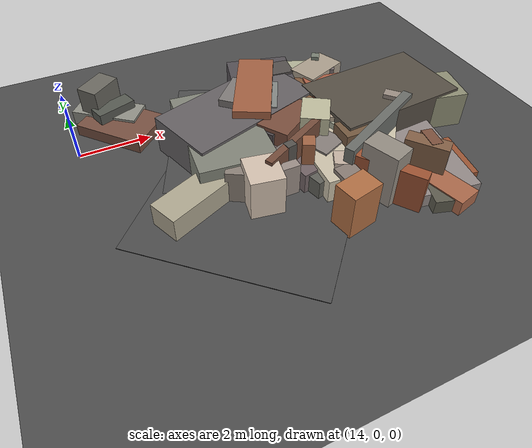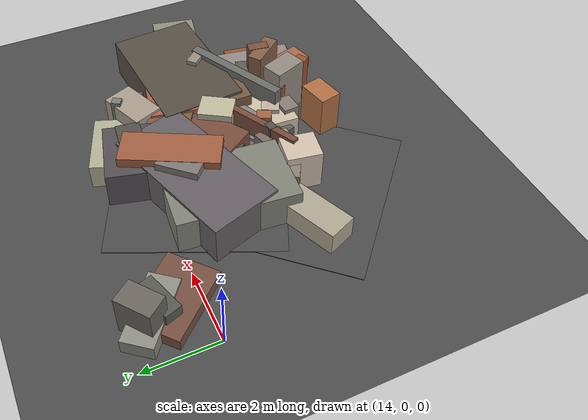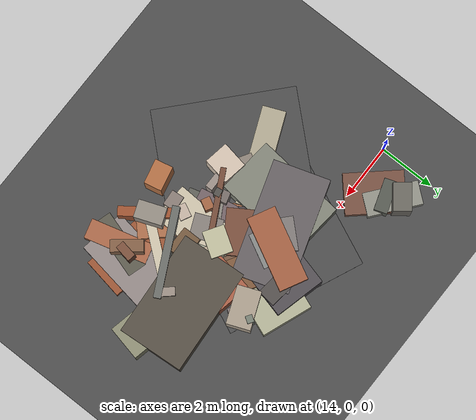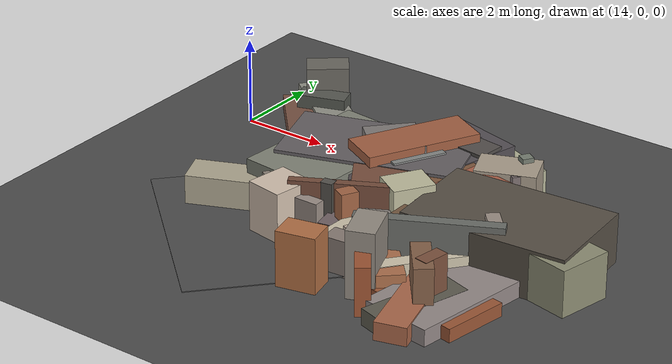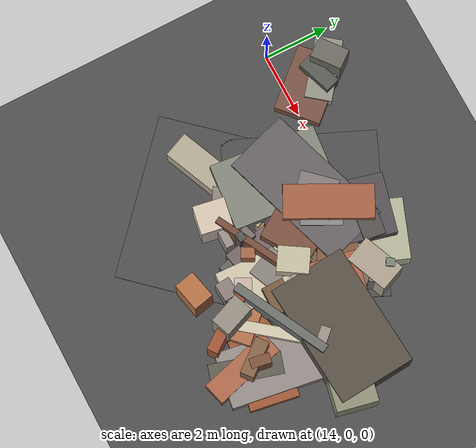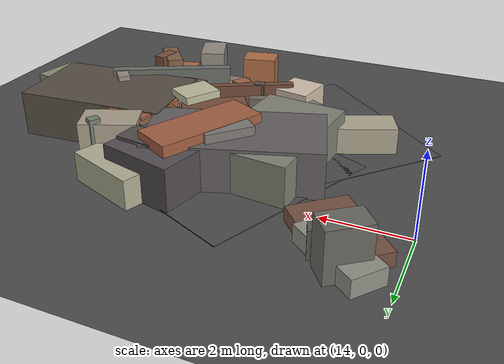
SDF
<sdf version="1.6">
 <world name="navitas_arena">
  <model name="ground_plane">
   <static>true</static>
   <link name="link">
    <collision name="collision">
     <geometry><plane><normal>0 0 1</normal><size>400 400</size></plane></geometry>
     <surface><friction><ode><mu>0.800</mu><mu2>0.800</mu2></ode></friction></surface>
    </collision>
    <visual name="visual">
     <cast_shadows>false</cast_shadows>
     <geometry><plane><normal>0 0 1</normal><size>400 400</size></plane></geometry>
     <material>
      <specular>0.04 0.04 0.04 1</specular>
      <script>
       <uri>file://media/materials/scripts/navitas_asphalt.material</uri>
       <name>Navitas/RealArenaAsphalt</name>
      </script>
     </material>
    </visual>
   </link>
  </model>
  <model name="road_orta_3_10">
   <static>true</static>
   <pose>17.181 -4.000 0.040 0 0 0.834</pose>
   <link name="link">
    <collision name="col"><geometry><box><size>3.600 5.000 0.020</size></box></geometry></collision>
    <visual name="vis">
     <geometry><box><size>3.600 5.000 0.020</size></box></geometry>
     <material>
      <specular>0.04 0.04 0.04 1</specular>
      <script>
       <uri>file://media/materials/scripts/navitas_asphalt.material</uri>
       <name>Navitas/RealArenaAsphalt</name>
      </script>
     </material>
    </visual>
   </link>
  </model>
  <model name="road_orta_3_11">
   <static>true</static>
   <pose>18.837 -1.300 0.040 0 0 1.156</pose>
   <link name="link">
    <collision name="col"><geometry><box><size>4.615 5.000 0.020</size></box></geometry></collision>
    <visual name="vis">
     <geometry><box><size>4.615 5.000 0.020</size></box></geometry>
     <material>
      <specular>0.04 0.04 0.04 1</specular>
      <script>
       <uri>file://media/materials/scripts/navitas_asphalt.material</uri>
       <name>Navitas/RealArenaAsphalt</name>
      </script>
     </material>
    </visual>
   </link>
  </model>
  <model name="blk_orta_3_1_0">
   <static>true</static>
   <pose>19.401 -2.650 0.000 0 0 0</pose>
   <link name="link">
    <collision name="col_0">
     <pose>0.028 0.918 0.344 0.000 0.000 2.064</pose>
     <geometry><box><size>3.346 0.257 0.689</size></box></geometry>
    </collision>
    <visual name="vis_0">
     <pose>0.028 0.918 0.344 0.000 0.000 2.064</pose>
     <geometry><box><size>3.346 0.257 0.689</size></box></geometry>
     <material>
      <ambient>0.41 0.27 0.20 1</ambient>
      <diffuse>0.44 0.29 0.21 1</diffuse>
      <specular>0.05 0.05 0.045 1</specular>
     </material>
    </visual>
    <collision name="col_1">
     <pose>0.155 0.380 0.409 0.000 0.000 3.125</pose>
     <geometry><box><size>1.923 0.296 0.818</size></box></geometry>
    </collision>
    <visual name="vis_1">
     <pose>0.155 0.380 0.409 0.000 0.000 3.125</pose>
     <geometry><box><size>1.923 0.296 0.818</size></box></geometry>
     <material>
      <ambient>0.55 0.51 0.47 1</ambient>
      <diffuse>0.59 0.55 0.50 1</diffuse>
      <specular>0.05 0.05 0.045 1</specular>
     </material>
    </visual>
    <collision name="col_2">
     <pose>0.575 0.623 0.384 0.000 0.000 3.213</pose>
     <geometry><box><size>0.272 0.488 0.768</size></box></geometry>
    </collision>
    <visual name="vis_2">
     <pose>0.575 0.623 0.384 0.000 0.000 3.213</pose>
     <geometry><box><size>0.272 0.488 0.768</size></box></geometry>
     <material>
      <ambient>0.43 0.29 0.24 1</ambient>
      <diffuse>0.47 0.31 0.26 1</diffuse>
      <specular>0.05 0.05 0.045 1</specular>
     </material>
    </visual>
    <collision name="col_3">
     <pose>0.257 -0.111 0.312 0.000 0.000 3.333</pose>
     <geometry><box><size>1.979 1.977 0.624</size></box></geometry>
    </collision>
    <visual name="vis_3">
     <pose>0.257 -0.111 0.312 0.000 0.000 3.333</pose>
     <geometry><box><size>1.979 1.977 0.624</size></box></geometry>
     <material>
      <ambient>0.41 0.36 0.37 1</ambient>
      <diffuse>0.45 0.39 0.40 1</diffuse>
      <specular>0.05 0.05 0.045 1</specular>
     </material>
    </visual>
    <collision name="col_4">
     <pose>-0.679 -0.692 0.646 0.000 0.000 1.735</pose>
     <geometry><box><size>0.223 0.270 1.291</size></box></geometry>
    </collision>
    <visual name="vis_4">
     <pose>-0.679 -0.692 0.646 0.000 0.000 1.735</pose>
     <geometry><box><size>0.223 0.270 1.291</size></box></geometry>
     <material>
      <ambient>0.30 0.29 0.28 1</ambient>
      <diffuse>0.33 0.32 0.30 1</diffuse>
      <specular>0.05 0.05 0.045 1</specular>
     </material>
    </visual>
    <collision name="col_5">
     <pose>0.318 -0.622 0.290 0.000 0.000 2.320</pose>
     <geometry><box><size>4.319 0.949 0.579</size></box></geometry>
    </collision>
    <visual name="vis_5">
     <pose>0.318 -0.622 0.290 0.000 0.000 2.320</pose>
     <geometry><box><size>4.319 0.949 0.579</size></box></geometry>
     <material>
      <ambient>0.63 0.40 0.27 1</ambient>
      <diffuse>0.68 0.44 0.30 1</diffuse>
      <specular>0.05 0.05 0.045 1</specular>
     </material>
    </visual>
    <collision name="col_6">
     <pose>0.056 0.843 0.480 0.000 0.000 3.247</pose>
     <geometry><box><size>3.223 0.305 0.960</size></box></geometry>
    </collision>
    <visual name="vis_6">
     <pose>0.056 0.843 0.480 0.000 0.000 3.247</pose>
     <geometry><box><size>3.223 0.305 0.960</size></box></geometry>
     <material>
      <ambient>0.44 0.32 0.25 1</ambient>
      <diffuse>0.47 0.35 0.27 1</diffuse>
      <specular>0.05 0.05 0.045 1</specular>
     </material>
    </visual>
    <collision name="col_7">
     <pose>0.757 0.518 0.535 0.000 0.000 1.860</pose>
     <geometry><box><size>0.543 0.264 1.070</size></box></geometry>
    </collision>
    <visual name="vis_7">
     <pose>0.757 0.518 0.535 0.000 0.000 1.860</pose>
     <geometry><box><size>0.543 0.264 1.070</size></box></geometry>
     <material>
      <ambient>0.62 0.60 0.53 1</ambient>
      <diffuse>0.67 0.65 0.57 1</diffuse>
      <specular>0.05 0.05 0.045 1</specular>
     </material>
    </visual>
    <collision name="col_8">
     <pose>0.611 0.318 0.646 0.000 0.000 2.581</pose>
     <geometry><box><size>0.763 0.939 1.292</size></box></geometry>
    </collision>
    <visual name="vis_8">
     <pose>0.611 0.318 0.646 0.000 0.000 2.581</pose>
     <geometry><box><size>0.763 0.939 1.292</size></box></geometry>
     <material>
      <ambient>0.69 0.69 0.57 1</ambient>
      <diffuse>0.75 0.74 0.62 1</diffuse>
      <specular>0.05 0.05 0.045 1</specular>
     </material>
    </visual>
    <collision name="col_9">
     <pose>0.343 -0.181 0.334 0.000 0.000 2.314</pose>
     <geometry><box><size>0.316 0.290 0.669</size></box></geometry>
    </collision>
    <visual name="vis_9">
     <pose>0.343 -0.181 0.334 0.000 0.000 2.314</pose>
     <geometry><box><size>0.316 0.290 0.669</size></box></geometry>
     <material>
      <ambient>0.46 0.32 0.27 1</ambient>
      <diffuse>0.50 0.35 0.29 1</diffuse>
      <specular>0.05 0.05 0.045 1</specular>
     </material>
    </visual>
   </link>
  </model>
  <model name="blk_orta_3_1_1">
   <static>true</static>
   <pose>20.146 -2.383 0.000 0 0 0</pose>
   <link name="link">
    <collision name="col_0">
     <pose>1.445 -0.607 0.318 0.000 0.000 2.067</pose>
     <geometry><box><size>0.529 0.488 0.637</size></box></geometry>
    </collision>
    <visual name="vis_0">
     <pose>1.445 -0.607 0.318 0.000 0.000 2.067</pose>
     <geometry><box><size>0.529 0.488 0.637</size></box></geometry>
     <material>
      <ambient>0.29 0.29 0.27 1</ambient>
      <diffuse>0.31 0.31 0.29 1</diffuse>
      <specular>0.05 0.05 0.045 1</specular>
     </material>
    </visual>
    <collision name="col_1">
     <pose>-1.469 -0.758 0.502 0.000 0.000 0.276</pose>
     <geometry><box><size>0.414 0.344 1.004</size></box></geometry>
    </collision>
    <visual name="vis_1">
     <pose>-1.469 -0.758 0.502 0.000 0.000 0.276</pose>
     <geometry><box><size>0.414 0.344 1.004</size></box></geometry>
     <material>
      <ambient>0.44 0.40 0.38 1</ambient>
      <diffuse>0.47 0.43 0.41 1</diffuse>
      <specular>0.05 0.05 0.045 1</specular>
     </material>
    </visual>
    <collision name="col_2">
     <pose>0.382 -0.105 0.322 0.000 0.000 0.118</pose>
     <geometry><box><size>0.491 0.456 0.644</size></box></geometry>
    </collision>
    <visual name="vis_2">
     <pose>0.382 -0.105 0.322 0.000 0.000 0.118</pose>
     <geometry><box><size>0.491 0.456 0.644</size></box></geometry>
     <material>
      <ambient>0.73 0.67 0.59 1</ambient>
      <diffuse>0.78 0.72 0.64 1</diffuse>
      <specular>0.05 0.05 0.045 1</specular>
     </material>
    </visual>
    <collision name="col_3">
     <pose>-0.919 -1.000 0.629 0.000 0.000 -0.484</pose>
     <geometry><box><size>0.321 0.399 1.258</size></box></geometry>
    </collision>
    <visual name="vis_3">
     <pose>-0.919 -1.000 0.629 0.000 0.000 -0.484</pose>
     <geometry><box><size>0.321 0.399 1.258</size></box></geometry>
     <material>
      <ambient>0.59 0.37 0.25 1</ambient>
      <diffuse>0.64 0.40 0.27 1</diffuse>
      <specular>0.05 0.05 0.045 1</specular>
     </material>
    </visual>
    <collision name="col_4">
     <pose>0.284 0.370 0.318 0.000 0.000 1.554</pose>
     <geometry><box><size>1.849 1.277 0.636</size></box></geometry>
    </collision>
    <visual name="vis_4">
     <pose>0.284 0.370 0.318 0.000 0.000 1.554</pose>
     <geometry><box><size>1.849 1.277 0.636</size></box></geometry>
     <material>
      <ambient>0.68 0.66 0.60 1</ambient>
      <diffuse>0.73 0.72 0.64 1</diffuse>
      <specular>0.05 0.05 0.045 1</specular>
     </material>
    </visual>
    <collision name="col_5">
     <pose>-0.853 -0.762 0.283 0.000 0.000 0.815</pose>
     <geometry><box><size>0.606 0.457 0.565</size></box></geometry>
    </collision>
    <visual name="vis_5">
     <pose>-0.853 -0.762 0.283 0.000 0.000 0.815</pose>
     <geometry><box><size>0.606 0.457 0.565</size></box></geometry>
     <material>
      <ambient>0.43 0.43 0.41 1</ambient>
      <diffuse>0.46 0.46 0.45 1</diffuse>
      <specular>0.05 0.05 0.045 1</specular>
     </material>
    </visual>
   </link>
  </model>
  <model name="blk_orta_3_1_2">
   <static>true</static>
   <pose>21.647 -2.281 0.000 0 0 0</pose>
   <link name="link">
    <collision name="col_0">
     <pose>-1.047 -0.044 0.519 0.000 0.000 -0.590</pose>
     <geometry><box><size>0.448 0.647 1.038</size></box></geometry>
    </collision>
    <visual name="vis_0">
     <pose>-1.047 -0.044 0.519 0.000 0.000 -0.590</pose>
     <geometry><box><size>0.448 0.647 1.038</size></box></geometry>
     <material>
      <ambient>0.70 0.64 0.56 1</ambient>
      <diffuse>0.76 0.69 0.60 1</diffuse>
      <specular>0.05 0.05 0.045 1</specular>
     </material>
    </visual>
    <collision name="col_1">
     <pose>-0.708 0.846 0.523 0.000 0.000 -0.534</pose>
     <geometry><box><size>4.595 1.167 1.045</size></box></geometry>
    </collision>
    <visual name="vis_1">
     <pose>-0.708 0.846 0.523 0.000 0.000 -0.534</pose>
     <geometry><box><size>4.595 1.167 1.045</size></box></geometry>
     <material>
      <ambient>0.46 0.32 0.22 1</ambient>
      <diffuse>0.50 0.35 0.24 1</diffuse>
      <specular>0.05 0.05 0.045 1</specular>
     </material>
    </visual>
    <collision name="col_2">
     <pose>0.870 0.032 0.527 0.000 0.000 -0.212</pose>
     <geometry><box><size>4.135 1.233 1.054</size></box></geometry>
    </collision>
    <visual name="vis_2">
     <pose>0.870 0.032 0.527 0.000 0.000 -0.212</pose>
     <geometry><box><size>4.135 1.233 1.054</size></box></geometry>
     <material>
      <ambient>0.52 0.52 0.43 1</ambient>
      <diffuse>0.56 0.56 0.46 1</diffuse>
      <specular>0.05 0.05 0.045 1</specular>
     </material>
    </visual>
    <collision name="col_3">
     <pose>0.401 -0.404 0.308 0.000 0.000 0.121</pose>
     <geometry><box><size>0.777 0.417 0.615</size></box></geometry>
    </collision>
    <visual name="vis_3">
     <pose>0.401 -0.404 0.308 0.000 0.000 0.121</pose>
     <geometry><box><size>0.777 0.417 0.615</size></box></geometry>
     <material>
      <ambient>0.44 0.33 0.24 1</ambient>
      <diffuse>0.47 0.35 0.26 1</diffuse>
      <specular>0.05 0.05 0.045 1</specular>
     </material>
    </visual>
    <collision name="col_4">
     <pose>0.708 -0.360 0.628 0.000 0.000 -0.839</pose>
     <geometry><box><size>0.616 0.299 1.257</size></box></geometry>
    </collision>
    <visual name="vis_4">
     <pose>0.708 -0.360 0.628 0.000 0.000 -0.839</pose>
     <geometry><box><size>0.616 0.299 1.257</size></box></geometry>
     <material>
      <ambient>0.56 0.52 0.48 1</ambient>
      <diffuse>0.61 0.56 0.52 1</diffuse>
      <specular>0.05 0.05 0.045 1</specular>
     </material>
    </visual>
    <collision name="col_5">
     <pose>0.642 0.278 0.565 0.000 0.000 0.074</pose>
     <geometry><box><size>3.763 2.329 1.130</size></box></geometry>
    </collision>
    <visual name="vis_5">
     <pose>0.642 0.278 0.565 0.000 0.000 0.074</pose>
     <geometry><box><size>3.763 2.329 1.130</size></box></geometry>
     <material>
      <ambient>0.31 0.29 0.25 1</ambient>
      <diffuse>0.34 0.31 0.27 1</diffuse>
      <specular>0.05 0.05 0.045 1</specular>
     </material>
    </visual>
    <collision name="col_6">
     <pose>0.192 0.521 0.553 0.000 0.000 -0.189</pose>
     <geometry><box><size>2.965 1.726 1.107</size></box></geometry>
    </collision>
    <visual name="vis_6">
     <pose>0.192 0.521 0.553 0.000 0.000 -0.189</pose>
     <geometry><box><size>2.965 1.726 1.107</size></box></geometry>
     <material>
      <ambient>0.62 0.35 0.26 1</ambient>
      <diffuse>0.67 0.38 0.28 1</diffuse>
      <specular>0.05 0.05 0.045 1</specular>
     </material>
    </visual>
    <collision name="col_7">
     <pose>0.263 0.361 0.553 0.000 0.000 1.529</pose>
     <geometry><box><size>1.273 0.674 1.106</size></box></geometry>
    </collision>
    <visual name="vis_7">
     <pose>0.263 0.361 0.553 0.000 0.000 1.529</pose>
     <geometry><box><size>1.273 0.674 1.106</size></box></geometry>
     <material>
      <ambient>0.57 0.34 0.25 1</ambient>
      <diffuse>0.62 0.36 0.27 1</diffuse>
      <specular>0.05 0.05 0.045 1</specular>
     </material>
    </visual>
   </link>
  </model>
  <model name="blk_orta_3_1_3">
   <static>true</static>
   <pose>20.606 -4.477 0.000 0 0 0</pose>
   <link name="link">
    <collision name="col_0">
     <pose>1.518 -0.040 0.600 0.000 0.000 1.402</pose>
     <geometry><box><size>0.601 0.305 1.200</size></box></geometry>
    </collision>
    <visual name="vis_0">
     <pose>1.518 -0.040 0.600 0.000 0.000 1.402</pose>
     <geometry><box><size>0.601 0.305 1.200</size></box></geometry>
     <material>
      <ambient>0.45 0.30 0.22 1</ambient>
      <diffuse>0.49 0.32 0.24 1</diffuse>
      <specular>0.05 0.05 0.045 1</specular>
     </material>
    </visual>
    <collision name="col_1">
     <pose>0.933 0.823 0.298 0.000 0.000 0.900</pose>
     <geometry><box><size>2.521 0.333 0.596</size></box></geometry>
    </collision>
    <visual name="vis_1">
     <pose>0.933 0.823 0.298 0.000 0.000 0.900</pose>
     <geometry><box><size>2.521 0.333 0.596</size></box></geometry>
     <material>
      <ambient>0.75 0.71 0.63 1</ambient>
      <diffuse>0.81 0.77 0.68 1</diffuse>
      <specular>0.05 0.05 0.045 1</specular>
     </material>
    </visual>
    <collision name="col_2">
     <pose>-0.701 0.584 0.422 0.000 0.000 1.106</pose>
     <geometry><box><size>0.501 0.390 0.844</size></box></geometry>
    </collision>
    <visual name="vis_2">
     <pose>-0.701 0.584 0.422 0.000 0.000 1.106</pose>
     <geometry><box><size>0.501 0.390 0.844</size></box></geometry>
     <material>
      <ambient>0.71 0.65 0.60 1</ambient>
      <diffuse>0.77 0.70 0.64 1</diffuse>
      <specular>0.05 0.05 0.045 1</specular>
     </material>
    </visual>
    <collision name="col_3">
     <pose>0.708 1.039 0.637 0.000 0.000 0.467</pose>
     <geometry><box><size>3.106 0.261 1.274</size></box></geometry>
    </collision>
    <visual name="vis_3">
     <pose>0.708 1.039 0.637 0.000 0.000 0.467</pose>
     <geometry><box><size>3.106 0.261 1.274</size></box></geometry>
     <material>
      <ambient>0.39 0.40 0.38 1</ambient>
      <diffuse>0.42 0.43 0.41 1</diffuse>
      <specular>0.05 0.05 0.045 1</specular>
     </material>
    </visual>
    <collision name="col_4">
     <pose>0.112 -0.383 0.552 0.000 0.000 2.198</pose>
     <geometry><box><size>1.794 0.334 1.105</size></box></geometry>
    </collision>
    <visual name="vis_4">
     <pose>0.112 -0.383 0.552 0.000 0.000 2.198</pose>
     <geometry><box><size>1.794 0.334 1.105</size></box></geometry>
     <material>
      <ambient>0.58 0.31 0.18 1</ambient>
      <diffuse>0.62 0.33 0.20 1</diffuse>
      <specular>0.05 0.05 0.045 1</specular>
     </material>
    </visual>
    <collision name="col_5">
     <pose>-1.118 -0.771 0.633 0.000 0.000 0.217</pose>
     <geometry><box><size>0.878 0.633 1.266</size></box></geometry>
    </collision>
    <visual name="vis_5">
     <pose>-1.118 -0.771 0.633 0.000 0.000 0.217</pose>
     <geometry><box><size>0.878 0.633 1.266</size></box></geometry>
     <material>
      <ambient>0.65 0.41 0.25 1</ambient>
      <diffuse>0.70 0.44 0.27 1</diffuse>
      <specular>0.05 0.05 0.045 1</specular>
     </material>
    </visual>
    <collision name="col_6">
     <pose>-0.414 1.447 0.277 0.000 0.000 0.267</pose>
     <geometry><box><size>2.758 1.780 0.554</size></box></geometry>
    </collision>
    <visual name="vis_6">
     <pose>-0.414 1.447 0.277 0.000 0.000 0.267</pose>
     <geometry><box><size>2.758 1.780 0.554</size></box></geometry>
     <material>
      <ambient>0.36 0.35 0.32 1</ambient>
      <diffuse>0.38 0.38 0.35 1</diffuse>
      <specular>0.05 0.05 0.045 1</specular>
     </material>
    </visual>
    <collision name="col_7">
     <pose>0.040 -0.167 0.770 0.000 0.000 1.935</pose>
     <geometry><box><size>0.980 0.621 1.541</size></box></geometry>
    </collision>
    <visual name="vis_7">
     <pose>0.040 -0.167 0.770 0.000 0.000 1.935</pose>
     <geometry><box><size>0.980 0.621 1.541</size></box></geometry>
     <material>
      <ambient>0.53 0.51 0.48 1</ambient>
      <diffuse>0.58 0.55 0.51 1</diffuse>
      <specular>0.05 0.05 0.045 1</specular>
     </material>
    </visual>
    <collision name="col_8">
     <pose>-0.799 0.109 0.419 0.000 0.000 0.081</pose>
     <geometry><box><size>0.552 0.453 0.838</size></box></geometry>
    </collision>
    <visual name="vis_8">
     <pose>-0.799 0.109 0.419 0.000 0.000 0.081</pose>
     <geometry><box><size>0.552 0.453 0.838</size></box></geometry>
     <material>
      <ambient>0.50 0.46 0.42 1</ambient>
      <diffuse>0.54 0.49 0.46 1</diffuse>
      <specular>0.05 0.05 0.045 1</specular>
     </material>
    </visual>
   </link>
  </model>
  <model name="blk_orta_3_1_4">
   <static>true</static>
   <pose>20.304 -1.101 0.000 0 0 0</pose>
   <link name="link">
    <collision name="col_0">
     <pose>-1.131 0.130 0.579 0.000 0.000 2.661</pose>
     <geometry><box><size>0.692 1.235 1.159</size></box></geometry>
    </collision>
    <visual name="vis_0">
     <pose>-1.131 0.130 0.579 0.000 0.000 2.661</pose>
     <geometry><box><size>0.692 1.235 1.159</size></box></geometry>
     <material>
      <ambient>0.48 0.49 0.48 1</ambient>
      <diffuse>0.52 0.53 0.52 1</diffuse>
      <specular>0.05 0.05 0.045 1</specular>
     </material>
    </visual>
    <collision name="col_1">
     <pose>-0.622 -1.555 0.352 0.000 0.000 3.657</pose>
     <geometry><box><size>2.612 0.177 0.704</size></box></geometry>
    </collision>
    <visual name="vis_1">
     <pose>-0.622 -1.555 0.352 0.000 0.000 3.657</pose>
     <geometry><box><size>2.612 0.177 0.704</size></box></geometry>
     <material>
      <ambient>0.50 0.48 0.45 1</ambient>
      <diffuse>0.54 0.52 0.49 1</diffuse>
      <specular>0.05 0.05 0.045 1</specular>
     </material>
    </visual>
    <collision name="col_2">
     <pose>0.450 -1.296 0.449 0.000 0.000 1.914</pose>
     <geometry><box><size>0.793 0.903 0.898</size></box></geometry>
    </collision>
    <visual name="vis_2">
     <pose>0.450 -1.296 0.449 0.000 0.000 1.914</pose>
     <geometry><box><size>0.793 0.903 0.898</size></box></geometry>
     <material>
      <ambient>0.61 0.62 0.55 1</ambient>
      <diffuse>0.66 0.67 0.59 1</diffuse>
      <specular>0.05 0.05 0.045 1</specular>
     </material>
    </visual>
    <collision name="col_3">
     <pose>-0.370 1.237 0.573 0.000 0.000 1.446</pose>
     <geometry><box><size>0.658 1.120 1.145</size></box></geometry>
    </collision>
    <visual name="vis_3">
     <pose>-0.370 1.237 0.573 0.000 0.000 1.446</pose>
     <geometry><box><size>0.658 1.120 1.145</size></box></geometry>
     <material>
      <ambient>0.31 0.29 0.28 1</ambient>
      <diffuse>0.33 0.31 0.30 1</diffuse>
      <specular>0.05 0.05 0.045 1</specular>
     </material>
    </visual>
    <collision name="col_4">
     <pose>-1.997 0.083 0.558 0.000 0.000 3.454</pose>
     <geometry><box><size>4.033 2.007 1.116</size></box></geometry>
    </collision>
    <visual name="vis_4">
     <pose>-1.997 0.083 0.558 0.000 0.000 3.454</pose>
     <geometry><box><size>4.033 2.007 1.116</size></box></geometry>
     <material>
      <ambient>0.37 0.36 0.36 1</ambient>
      <diffuse>0.40 0.38 0.39 1</diffuse>
      <specular>0.05 0.05 0.045 1</specular>
     </material>
    </visual>
    <collision name="col_5">
     <pose>1.053 1.175 0.641 0.000 0.000 2.580</pose>
     <geometry><box><size>0.233 0.259 1.281</size></box></geometry>
    </collision>
    <visual name="vis_5">
     <pose>1.053 1.175 0.641 0.000 0.000 2.580</pose>
     <geometry><box><size>0.233 0.259 1.281</size></box></geometry>
     <material>
      <ambient>0.44 0.46 0.41 1</ambient>
      <diffuse>0.47 0.50 0.45 1</diffuse>
      <specular>0.05 0.05 0.045 1</specular>
     </material>
    </visual>
   </link>
  </model>
  <model name="blk_orta_3_1_5">
   <static>true</static>
   <pose>19.453 -1.354 0.000 0 0 0</pose>
   <link name="link">
    <collision name="col_0">
     <pose>-0.823 0.467 0.665 0.000 0.000 2.393</pose>
     <geometry><box><size>1.171 1.159 1.330</size></box></geometry>
    </collision>
    <visual name="vis_0">
     <pose>-0.823 0.467 0.665 0.000 0.000 2.393</pose>
     <geometry><box><size>1.171 1.159 1.330</size></box></geometry>
     <material>
      <ambient>0.46 0.44 0.43 1</ambient>
      <diffuse>0.50 0.48 0.47 1</diffuse>
      <specular>0.05 0.05 0.045 1</specular>
     </material>
    </visual>
    <collision name="col_1">
     <pose>0.395 0.945 0.548 0.000 0.000 1.620</pose>
     <geometry><box><size>1.818 0.178 1.096</size></box></geometry>
    </collision>
    <visual name="vis_1">
     <pose>0.395 0.945 0.548 0.000 0.000 1.620</pose>
     <geometry><box><size>1.818 0.178 1.096</size></box></geometry>
     <material>
      <ambient>0.76 0.72 0.63 1</ambient>
      <diffuse>0.82 0.78 0.68 1</diffuse>
      <specular>0.05 0.05 0.045 1</specular>
     </material>
    </visual>
    <collision name="col_2">
     <pose>-0.111 -0.479 0.390 0.000 0.000 0.707</pose>
     <geometry><box><size>0.831 0.912 0.779</size></box></geometry>
    </collision>
    <visual name="vis_2">
     <pose>-0.111 -0.479 0.390 0.000 0.000 0.707</pose>
     <geometry><box><size>0.831 0.912 0.779</size></box></geometry>
     <material>
      <ambient>0.47 0.33 0.27 1</ambient>
      <diffuse>0.51 0.35 0.29 1</diffuse>
      <specular>0.05 0.05 0.045 1</specular>
     </material>
    </visual>
    <collision name="col_3">
     <pose>0.068 1.296 0.534 0.000 0.000 1.323</pose>
     <geometry><box><size>2.060 1.832 1.068</size></box></geometry>
    </collision>
    <visual name="vis_3">
     <pose>0.068 1.296 0.534 0.000 0.000 1.323</pose>
     <geometry><box><size>2.060 1.832 1.068</size></box></geometry>
     <material>
      <ambient>0.30 0.29 0.30 1</ambient>
      <diffuse>0.33 0.31 0.33 1</diffuse>
      <specular>0.05 0.05 0.045 1</specular>
     </material>
    </visual>
    <collision name="col_4">
     <pose>-1.037 0.848 0.508 0.000 0.000 1.029</pose>
     <geometry><box><size>0.450 0.574 1.017</size></box></geometry>
    </collision>
    <visual name="vis_4">
     <pose>-1.037 0.848 0.508 0.000 0.000 1.029</pose>
     <geometry><box><size>0.450 0.574 1.017</size></box></geometry>
     <material>
      <ambient>0.61 0.60 0.51 1</ambient>
      <diffuse>0.65 0.64 0.56 1</diffuse>
      <specular>0.05 0.05 0.045 1</specular>
     </material>
    </visual>
    <collision name="col_5">
     <pose>0.693 1.213 0.358 0.000 0.000 1.208</pose>
     <geometry><box><size>2.578 1.826 0.716</size></box></geometry>
    </collision>
    <visual name="vis_5">
     <pose>0.693 1.213 0.358 0.000 0.000 1.208</pose>
     <geometry><box><size>2.578 1.826 0.716</size></box></geometry>
     <material>
      <ambient>0.65 0.65 0.55 1</ambient>
      <diffuse>0.70 0.70 0.59 1</diffuse>
      <specular>0.05 0.05 0.045 1</specular>
     </material>
    </visual>
    <collision name="col_6">
     <pose>1.055 -0.412 0.349 0.000 0.000 2.141</pose>
     <geometry><box><size>0.672 0.291 0.698</size></box></geometry>
    </collision>
    <visual name="vis_6">
     <pose>1.055 -0.412 0.349 0.000 0.000 2.141</pose>
     <geometry><box><size>0.672 0.291 0.698</size></box></geometry>
     <material>
      <ambient>0.46 0.30 0.25 1</ambient>
      <diffuse>0.50 0.32 0.27 1</diffuse>
      <specular>0.05 0.05 0.045 1</specular>
     </material>
    </visual>
    <collision name="col_7">
     <pose>-0.233 -0.491 0.545 0.000 0.000 2.098</pose>
     <geometry><box><size>0.390 0.407 1.090</size></box></geometry>
    </collision>
    <visual name="vis_7">
     <pose>-0.233 -0.491 0.545 0.000 0.000 2.098</pose>
     <geometry><box><size>0.390 0.407 1.090</size></box></geometry>
     <material>
      <ambient>0.53 0.53 0.49 1</ambient>
      <diffuse>0.57 0.57 0.53 1</diffuse>
      <specular>0.05 0.05 0.045 1</specular>
     </material>
    </visual>
    <collision name="col_8">
     <pose>-0.123 -0.656 0.550 0.000 0.000 0.576</pose>
     <geometry><box><size>1.580 0.918 1.100</size></box></geometry>
    </collision>
    <visual name="vis_8">
     <pose>-0.123 -0.656 0.550 0.000 0.000 0.576</pose>
     <geometry><box><size>1.580 0.918 1.100</size></box></geometry>
     <material>
      <ambient>0.45 0.28 0.22 1</ambient>
      <diffuse>0.48 0.31 0.24 1</diffuse>
      <specular>0.05 0.05 0.045 1</specular>
     </material>
    </visual>
   </link>
  </model>
  <model name="blk_orta_3_1_6">
   <static>true</static>
   <pose>20.413 -1.589 0.000 0 0 0</pose>
   <link name="link">
    <collision name="col_0">
     <pose>-1.722 0.410 0.632 0.000 0.000 1.613</pose>
     <geometry><box><size>0.812 0.525 1.264</size></box></geometry>
    </collision>
    <visual name="vis_0">
     <pose>-1.722 0.410 0.632 0.000 0.000 1.613</pose>
     <geometry><box><size>0.812 0.525 1.264</size></box></geometry>
     <material>
      <ambient>0.71 0.70 0.60 1</ambient>
      <diffuse>0.76 0.76 0.65 1</diffuse>
      <specular>0.05 0.05 0.045 1</specular>
     </material>
    </visual>
    <collision name="col_1">
     <pose>-0.691 -0.317 0.440 0.000 0.000 0.470</pose>
     <geometry><box><size>2.281 0.357 0.880</size></box></geometry>
    </collision>
    <visual name="vis_1">
     <pose>-0.691 -0.317 0.440 0.000 0.000 0.470</pose>
     <geometry><box><size>2.281 0.357 0.880</size></box></geometry>
     <material>
      <ambient>0.32 0.29 0.30 1</ambient>
      <diffuse>0.35 0.31 0.32 1</diffuse>
      <specular>0.05 0.05 0.045 1</specular>
     </material>
    </visual>
    <collision name="col_2">
     <pose>-1.282 1.046 0.314 0.000 0.000 0.786</pose>
     <geometry><box><size>0.348 0.359 0.628</size></box></geometry>
    </collision>
    <visual name="vis_2">
     <pose>-1.282 1.046 0.314 0.000 0.000 0.786</pose>
     <geometry><box><size>0.348 0.359 0.628</size></box></geometry>
     <material>
      <ambient>0.61 0.56 0.56 1</ambient>
      <diffuse>0.66 0.61 0.61 1</diffuse>
      <specular>0.05 0.05 0.045 1</specular>
     </material>
    </visual>
    <collision name="col_3">
     <pose>-0.432 -1.606 0.357 0.000 0.000 1.523</pose>
     <geometry><box><size>2.583 1.367 0.715</size></box></geometry>
    </collision>
    <visual name="vis_3">
     <pose>-0.432 -1.606 0.357 0.000 0.000 1.523</pose>
     <geometry><box><size>2.583 1.367 0.715</size></box></geometry>
     <material>
      <ambient>0.74 0.70 0.62 1</ambient>
      <diffuse>0.80 0.76 0.67 1</diffuse>
      <specular>0.05 0.05 0.045 1</specular>
     </material>
    </visual>
    <collision name="col_4">
     <pose>-1.428 0.947 0.669 0.000 0.000 1.093</pose>
     <geometry><box><size>2.638 1.015 1.338</size></box></geometry>
    </collision>
    <visual name="vis_4">
     <pose>-1.428 0.947 0.669 0.000 0.000 1.093</pose>
     <geometry><box><size>2.638 1.015 1.338</size></box></geometry>
     <material>
      <ambient>0.59 0.35 0.24 1</ambient>
      <diffuse>0.64 0.38 0.26 1</diffuse>
      <specular>0.05 0.05 0.045 1</specular>
     </material>
    </visual>
    <collision name="col_5">
     <pose>-0.566 -1.358 0.384 0.000 0.000 1.978</pose>
     <geometry><box><size>0.991 0.827 0.768</size></box></geometry>
    </collision>
    <visual name="vis_5">
     <pose>-0.566 -1.358 0.384 0.000 0.000 1.978</pose>
     <geometry><box><size>0.991 0.827 0.768</size></box></geometry>
     <material>
      <ambient>0.49 0.46 0.44 1</ambient>
      <diffuse>0.53 0.50 0.48 1</diffuse>
      <specular>0.05 0.05 0.045 1</specular>
     </material>
    </visual>
    <collision name="col_6">
     <pose>0.325 -1.585 0.526 0.000 0.000 -0.002</pose>
     <geometry><box><size>0.885 0.661 1.052</size></box></geometry>
    </collision>
    <visual name="vis_6">
     <pose>0.325 -1.585 0.526 0.000 0.000 -0.002</pose>
     <geometry><box><size>0.885 0.661 1.052</size></box></geometry>
     <material>
      <ambient>0.43 0.33 0.23 1</ambient>
      <diffuse>0.46 0.35 0.25 1</diffuse>
      <specular>0.05 0.05 0.045 1</specular>
     </material>
    </visual>
    <collision name="col_7">
     <pose>-1.205 1.163 0.497 0.000 0.000 0.026</pose>
     <geometry><box><size>1.297 0.515 0.995</size></box></geometry>
    </collision>
    <visual name="vis_7">
     <pose>-1.205 1.163 0.497 0.000 0.000 0.026</pose>
     <geometry><box><size>1.297 0.515 0.995</size></box></geometry>
     <material>
      <ambient>0.37 0.36 0.35 1</ambient>
      <diffuse>0.40 0.39 0.37 1</diffuse>
      <specular>0.05 0.05 0.045 1</specular>
     </material>
    </visual>
    <collision name="col_8">
     <pose>1.128 1.194 0.581 0.000 0.000 0.967</pose>
     <geometry><box><size>0.550 0.380 1.161</size></box></geometry>
    </collision>
    <visual name="vis_8">
     <pose>1.128 1.194 0.581 0.000 0.000 0.967</pose>
     <geometry><box><size>0.550 0.380 1.161</size></box></geometry>
     <material>
      <ambient>0.45 0.41 0.41 1</ambient>
      <diffuse>0.49 0.44 0.44 1</diffuse>
      <specular>0.05 0.05 0.045 1</specular>
     </material>
    </visual>
    <collision name="col_9">
     <pose>0.759 1.272 0.587 0.000 0.000 0.382</pose>
     <geometry><box><size>1.342 0.841 1.175</size></box></geometry>
    </collision>
    <visual name="vis_9">
     <pose>0.759 1.272 0.587 0.000 0.000 0.382</pose>
     <geometry><box><size>1.342 0.841 1.175</size></box></geometry>
     <material>
      <ambient>0.62 0.57 0.51 1</ambient>
      <diffuse>0.67 0.62 0.55 1</diffuse>
      <specular>0.05 0.05 0.045 1</specular>
     </material>
    </visual>
   </link>
  </model>
  <model name="blk_orta_3_1_7">
   <static>true</static>
   <pose>17.920 -2.752 0.000 0 0 0</pose>
   <link name="link">
    <collision name="col_0">
     <pose>0.554 -0.954 0.484 0.000 0.000 0.004</pose>
     <geometry><box><size>0.599 0.258 0.968</size></box></geometry>
    </collision>
    <visual name="vis_0">
     <pose>0.554 -0.954 0.484 0.000 0.000 0.004</pose>
     <geometry><box><size>0.599 0.258 0.968</size></box></geometry>
     <material>
      <ambient>0.56 0.52 0.50 1</ambient>
      <diffuse>0.61 0.56 0.53 1</diffuse>
      <specular>0.05 0.05 0.045 1</specular>
     </material>
    </visual>
    <collision name="col_1">
     <pose>-0.295 -0.229 0.488 0.000 0.000 -0.526</pose>
     <geometry><box><size>0.772 1.272 0.976</size></box></geometry>
    </collision>
    <visual name="vis_1">
     <pose>-0.295 -0.229 0.488 0.000 0.000 -0.526</pose>
     <geometry><box><size>0.772 1.272 0.976</size></box></geometry>
     <material>
      <ambient>0.51 0.47 0.44 1</ambient>
      <diffuse>0.55 0.51 0.47 1</diffuse>
      <specular>0.05 0.05 0.045 1</specular>
     </material>
    </visual>
    <collision name="col_2">
     <pose>0.721 0.799 0.492 0.000 0.000 0.582</pose>
     <geometry><box><size>0.655 1.003 0.984</size></box></geometry>
    </collision>
    <visual name="vis_2">
     <pose>0.721 0.799 0.492 0.000 0.000 0.582</pose>
     <geometry><box><size>0.655 1.003 0.984</size></box></geometry>
     <material>
      <ambient>0.30 0.27 0.28 1</ambient>
      <diffuse>0.32 0.29 0.30 1</diffuse>
      <specular>0.05 0.05 0.045 1</specular>
     </material>
    </visual>
    <collision name="col_3">
     <pose>-0.343 1.114 0.520 0.000 0.000 1.475</pose>
     <geometry><box><size>3.228 2.032 1.041</size></box></geometry>
    </collision>
    <visual name="vis_3">
     <pose>-0.343 1.114 0.520 0.000 0.000 1.475</pose>
     <geometry><box><size>3.228 2.032 1.041</size></box></geometry>
     <material>
      <ambient>0.47 0.48 0.44 1</ambient>
      <diffuse>0.51 0.52 0.47 1</diffuse>
      <specular>0.05 0.05 0.045 1</specular>
     </material>
    </visual>
    <collision name="col_4">
     <pose>1.045 -0.429 0.641 0.000 0.000 0.484</pose>
     <geometry><box><size>2.273 0.195 1.281</size></box></geometry>
    </collision>
    <visual name="vis_4">
     <pose>1.045 -0.429 0.641 0.000 0.000 0.484</pose>
     <geometry><box><size>2.273 0.195 1.281</size></box></geometry>
     <material>
      <ambient>0.43 0.28 0.22 1</ambient>
      <diffuse>0.46 0.30 0.23 1</diffuse>
      <specular>0.05 0.05 0.045 1</specular>
     </material>
    </visual>
    <collision name="col_5">
     <pose>-0.129 -1.012 0.596 0.000 0.000 -0.170</pose>
     <geometry><box><size>0.866 0.957 1.191</size></box></geometry>
    </collision>
    <visual name="vis_5">
     <pose>-0.129 -1.012 0.596 0.000 0.000 -0.170</pose>
     <geometry><box><size>0.866 0.957 1.191</size></box></geometry>
     <material>
      <ambient>0.77 0.70 0.63 1</ambient>
      <diffuse>0.83 0.76 0.69 1</diffuse>
      <specular>0.05 0.05 0.045 1</specular>
     </material>
    </visual>
    <collision name="col_6">
     <pose>0.177 0.429 0.341 0.000 0.000 0.966</pose>
     <geometry><box><size>2.087 0.257 0.682</size></box></geometry>
    </collision>
    <visual name="vis_6">
     <pose>0.177 0.429 0.341 0.000 0.000 0.966</pose>
     <geometry><box><size>2.087 0.257 0.682</size></box></geometry>
     <material>
      <ambient>0.40 0.39 0.34 1</ambient>
      <diffuse>0.44 0.42 0.37 1</diffuse>
      <specular>0.05 0.05 0.045 1</specular>
     </material>
    </visual>
    <collision name="col_7">
     <pose>-1.063 -0.261 0.354 0.000 0.000 0.400</pose>
     <geometry><box><size>3.422 0.817 0.709</size></box></geometry>
    </collision>
    <visual name="vis_7">
     <pose>-1.063 -0.261 0.354 0.000 0.000 0.400</pose>
     <geometry><box><size>3.422 0.817 0.709</size></box></geometry>
     <material>
      <ambient>0.64 0.61 0.53 1</ambient>
      <diffuse>0.69 0.66 0.57 1</diffuse>
      <specular>0.05 0.05 0.045 1</specular>
     </material>
    </visual>
   </link>
  </model>
  <model name="deb_orta_79">
   <static>true</static>
   <pose>21.867 -4.697 0.000 0 0 0</pose>
   <link name="link">
    <collision name="col_0">
     <pose>0.167 -0.227 0.189 0.000 0.000 1.277</pose>
     <geometry><box><size>2.125 0.672 0.378</size></box></geometry>
    </collision>
    <visual name="vis_0">
     <pose>0.167 -0.227 0.189 0.000 0.000 1.277</pose>
     <geometry><box><size>2.125 0.672 0.378</size></box></geometry>
     <material>
      <ambient>0.34 0.34 0.29 1</ambient>
      <diffuse>0.37 0.36 0.31 1</diffuse>
      <specular>0.05 0.05 0.045 1</specular>
     </material>
    </visual>
    <collision name="col_1">
     <pose>0.099 -0.303 0.206 0.000 0.000 1.835</pose>
     <geometry><box><size>2.234 0.697 0.413</size></box></geometry>
    </collision>
    <visual name="vis_1">
     <pose>0.099 -0.303 0.206 0.000 0.000 1.835</pose>
     <geometry><box><size>2.234 0.697 0.413</size></box></geometry>
     <material>
      <ambient>0.62 0.38 0.27 1</ambient>
      <diffuse>0.67 0.41 0.29 1</diffuse>
      <specular>0.05 0.05 0.045 1</specular>
     </material>
    </visual>
    <collision name="col_2">
     <pose>-0.172 -0.144 0.165 0.000 0.000 0.015</pose>
     <geometry><box><size>0.294 0.273 0.330</size></box></geometry>
    </collision>
    <visual name="vis_2">
     <pose>-0.172 -0.144 0.165 0.000 0.000 0.015</pose>
     <geometry><box><size>0.294 0.273 0.330</size></box></geometry>
     <material>
      <ambient>0.47 0.43 0.42 1</ambient>
      <diffuse>0.50 0.47 0.46 1</diffuse>
      <specular>0.05 0.05 0.045 1</specular>
     </material>
    </visual>
    <collision name="col_3">
     <pose>0.128 0.266 0.152 0.000 0.000 -0.168</pose>
     <geometry><box><size>2.621 1.477 0.304</size></box></geometry>
    </collision>
    <visual name="vis_3">
     <pose>0.128 0.266 0.152 0.000 0.000 -0.168</pose>
     <geometry><box><size>2.621 1.477 0.304</size></box></geometry>
     <material>
      <ambient>0.57 0.32 0.19 1</ambient>
      <diffuse>0.61 0.34 0.21 1</diffuse>
      <specular>0.05 0.05 0.045 1</specular>
     </material>
    </visual>
    <collision name="col_4">
     <pose>0.097 0.088 0.596 0.000 0.000 2.243</pose>
     <geometry><box><size>1.113 0.414 1.191</size></box></geometry>
    </collision>
    <visual name="vis_4">
     <pose>0.097 0.088 0.596 0.000 0.000 2.243</pose>
     <geometry><box><size>1.113 0.414 1.191</size></box></geometry>
     <material>
      <ambient>0.48 0.35 0.26 1</ambient>
      <diffuse>0.52 0.38 0.28 1</diffuse>
      <specular>0.05 0.05 0.045 1</specular>
     </material>
    </visual>
    <collision name="col_5">
     <pose>0.385 0.378 0.188 0.000 0.000 1.416</pose>
     <geometry><box><size>2.723 1.667 0.376</size></box></geometry>
    </collision>
    <visual name="vis_5">
     <pose>0.385 0.378 0.188 0.000 0.000 1.416</pose>
     <geometry><box><size>2.723 1.667 0.376</size></box></geometry>
     <material>
      <ambient>0.53 0.50 0.49 1</ambient>
      <diffuse>0.58 0.54 0.53 1</diffuse>
      <specular>0.05 0.05 0.045 1</specular>
     </material>
    </visual>
    <collision name="col_6">
     <pose>0.040 0.399 0.143 0.000 0.000 1.297</pose>
     <geometry><box><size>0.207 0.304 0.285</size></box></geometry>
    </collision>
    <visual name="vis_6">
     <pose>0.040 0.399 0.143 0.000 0.000 1.297</pose>
     <geometry><box><size>0.207 0.304 0.285</size></box></geometry>
     <material>
      <ambient>0.36 0.35 0.32 1</ambient>
      <diffuse>0.39 0.38 0.35 1</diffuse>
      <specular>0.05 0.05 0.045 1</specular>
     </material>
    </visual>
   </link>
  </model>
  <model name="deb_orta_177">
   <static>true</static>
   <pose>14.998 1.018 0.000 0 0 0</pose>
   <link name="link">
    <collision name="col_0">
     <pose>-0.065 0.614 0.128 0.000 0.000 2.528</pose>
     <geometry><box><size>0.420 0.435 0.256</size></box></geometry>
    </collision>
    <visual name="vis_0">
     <pose>-0.065 0.614 0.128 0.000 0.000 2.528</pose>
     <geometry><box><size>0.420 0.435 0.256</size></box></geometry>
     <material>
      <ambient>0.37 0.37 0.35 1</ambient>
      <diffuse>0.40 0.40 0.38 1</diffuse>
      <specular>0.05 0.05 0.045 1</specular>
     </material>
    </visual>
    <collision name="col_1">
     <pose>0.189 0.258 0.210 0.000 0.000 2.471</pose>
     <geometry><box><size>1.917 0.818 0.420</size></box></geometry>
    </collision>
    <visual name="vis_1">
     <pose>0.189 0.258 0.210 0.000 0.000 2.471</pose>
     <geometry><box><size>1.917 0.818 0.420</size></box></geometry>
     <material>
      <ambient>0.53 0.53 0.49 1</ambient>
      <diffuse>0.57 0.57 0.53 1</diffuse>
      <specular>0.05 0.05 0.045 1</specular>
     </material>
    </visual>
    <collision name="col_2">
     <pose>0.394 -0.349 0.172 0.000 0.000 2.298</pose>
     <geometry><box><size>2.066 1.420 0.344</size></box></geometry>
    </collision>
    <visual name="vis_2">
     <pose>0.394 -0.349 0.172 0.000 0.000 2.298</pose>
     <geometry><box><size>2.066 1.420 0.344</size></box></geometry>
     <material>
      <ambient>0.44 0.30 0.24 1</ambient>
      <diffuse>0.47 0.32 0.26 1</diffuse>
      <specular>0.05 0.05 0.045 1</specular>
     </material>
    </visual>
    <collision name="col_3">
     <pose>0.294 0.031 0.329 0.000 0.000 3.468</pose>
     <geometry><box><size>1.127 0.467 0.657</size></box></geometry>
    </collision>
    <visual name="vis_3">
     <pose>0.294 0.031 0.329 0.000 0.000 3.468</pose>
     <geometry><box><size>1.127 0.467 0.657</size></box></geometry>
     <material>
      <ambient>0.31 0.33 0.30 1</ambient>
      <diffuse>0.34 0.35 0.32 1</diffuse>
      <specular>0.05 0.05 0.045 1</specular>
     </material>
    </visual>
    <collision name="col_4">
     <pose>0.052 0.501 0.586 0.000 0.000 2.230</pose>
     <geometry><box><size>0.631 0.966 1.173</size></box></geometry>
    </collision>
    <visual name="vis_4">
     <pose>0.052 0.501 0.586 0.000 0.000 2.230</pose>
     <geometry><box><size>0.631 0.966 1.173</size></box></geometry>
     <material>
      <ambient>0.39 0.38 0.35 1</ambient>
      <diffuse>0.42 0.41 0.38 1</diffuse>
      <specular>0.05 0.05 0.045 1</specular>
     </material>
    </visual>
   </link>
  </model>
 </world>
</sdf>
